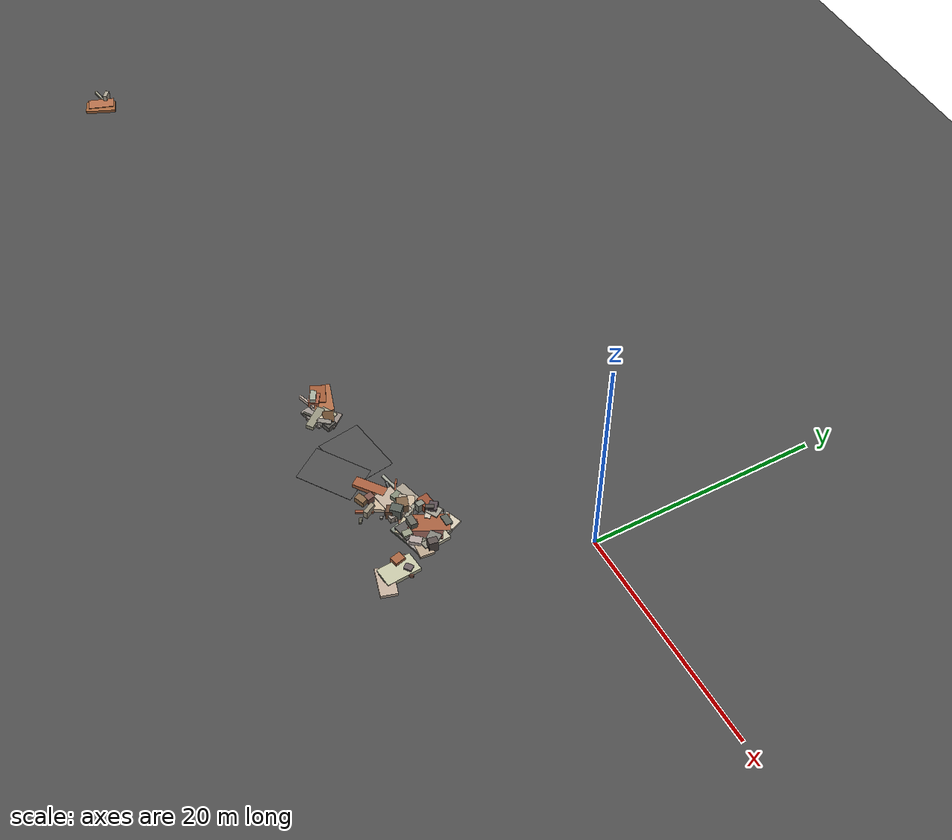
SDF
<sdf version="1.6">
 <world name="navitas_arena">
  <model name="ground_plane">
   <static>true</static>
   <link name="link">
    <collision name="collision">
     <geometry><plane><normal>0 0 1</normal><size>400 400</size></plane></geometry>
     <surface><friction><ode><mu>0.800</mu><mu2>0.800</mu2></ode></friction></surface>
    </collision>
    <visual name="visual">
     <cast_shadows>false</cast_shadows>
     <geometry><plane><normal>0 0 1</normal><size>400 400</size></plane></geometry>
     <material>
      <specular>0.04 0.04 0.04 1</specular>
      <script>
       <uri>file://media/materials/scripts/navitas_asphalt.material</uri>
       <name>Navitas/RealArenaAsphalt</name>
      </script>
     </material>
    </visual>
   </link>
  </model>
  <model name="deb_kolay_165">
   <static>true</static>
   <pose>-66.471 -13.567 0.000 0 0 0</pose>
   <link name="link">
    <collision name="col_0">
     <pose>0.364 -0.550 0.159 0.000 0.000 1.229</pose>
     <geometry><box><size>2.345 1.137 0.318</size></box></geometry>
    </collision>
    <visual name="vis_0">
     <pose>0.364 -0.550 0.159 0.000 0.000 1.229</pose>
     <geometry><box><size>2.345 1.137 0.318</size></box></geometry>
     <material>
      <ambient>0.65 0.40 0.26 1</ambient>
      <diffuse>0.70 0.43 0.29 1</diffuse>
      <specular>0.05 0.05 0.045 1</specular>
     </material>
    </visual>
    <collision name="col_1">
     <pose>-0.063 0.193 0.448 0.000 0.000 -0.726</pose>
     <geometry><box><size>0.782 0.366 0.896</size></box></geometry>
    </collision>
    <visual name="vis_1">
     <pose>-0.063 0.193 0.448 0.000 0.000 -0.726</pose>
     <geometry><box><size>0.782 0.366 0.896</size></box></geometry>
     <material>
      <ambient>0.61 0.59 0.52 1</ambient>
      <diffuse>0.66 0.63 0.56 1</diffuse>
      <specular>0.05 0.05 0.045 1</specular>
     </material>
    </visual>
    <collision name="col_2">
     <pose>0.689 -0.725 0.133 0.000 0.000 1.157</pose>
     <geometry><box><size>2.716 1.278 0.266</size></box></geometry>
    </collision>
    <visual name="vis_2">
     <pose>0.689 -0.725 0.133 0.000 0.000 1.157</pose>
     <geometry><box><size>2.716 1.278 0.266</size></box></geometry>
     <material>
      <ambient>0.61 0.38 0.22 1</ambient>
      <diffuse>0.66 0.41 0.24 1</diffuse>
      <specular>0.05 0.05 0.045 1</specular>
     </material>
    </visual>
    <collision name="col_3">
     <pose>-0.401 -0.198 0.147 0.000 0.000 0.121</pose>
     <geometry><box><size>2.326 0.196 0.294</size></box></geometry>
    </collision>
    <visual name="vis_3">
     <pose>-0.401 -0.198 0.147 0.000 0.000 0.121</pose>
     <geometry><box><size>2.326 0.196 0.294</size></box></geometry>
     <material>
      <ambient>0.60 0.59 0.52 1</ambient>
      <diffuse>0.65 0.64 0.56 1</diffuse>
      <specular>0.05 0.05 0.045 1</specular>
     </material>
    </visual>
    <collision name="col_4">
     <pose>0.104 -0.308 0.084 0.000 0.000 -0.047</pose>
     <geometry><box><size>1.338 0.265 0.169</size></box></geometry>
    </collision>
    <visual name="vis_4">
     <pose>0.104 -0.308 0.084 0.000 0.000 -0.047</pose>
     <geometry><box><size>1.338 0.265 0.169</size></box></geometry>
     <material>
      <ambient>0.55 0.53 0.50 1</ambient>
      <diffuse>0.60 0.57 0.54 1</diffuse>
      <specular>0.05 0.05 0.045 1</specular>
     </material>
    </visual>
   </link>
  </model>
  <model name="road_orta_1_5">
   <static>true</static>
   <pose>-15.738 -14.771 0.040 0 0 2.157</pose>
   <link name="link">
    <collision name="col"><geometry><box><size>3.328 5.000 0.020</size></box></geometry></collision>
    <visual name="vis">
     <geometry><box><size>3.328 5.000 0.020</size></box></geometry>
     <material>
      <specular>0.04 0.04 0.04 1</specular>
      <script>
       <uri>file://media/materials/scripts/navitas_asphalt.material</uri>
       <name>Navitas/RealArenaAsphalt</name>
      </script>
     </material>
    </visual>
   </link>
  </model>
  <model name="road_orta_1_6">
   <static>true</static>
   <pose>-16.605 -12.340 0.040 0 0 1.707</pose>
   <link name="link">
    <collision name="col"><geometry><box><size>3.767 5.000 0.020</size></box></geometry></collision>
    <visual name="vis">
     <geometry><box><size>3.767 5.000 0.020</size></box></geometry>
     <material>
      <specular>0.04 0.04 0.04 1</specular>
      <script>
       <uri>file://media/materials/scripts/navitas_asphalt.material</uri>
       <name>Navitas/RealArenaAsphalt</name>
      </script>
     </material>
    </visual>
   </link>
  </model>
  <model name="deb_orta_9">
   <static>true</static>
   <pose>-12.191 -12.114 0.000 0 0 0</pose>
   <link name="link">
    <collision name="col_0">
     <pose>0.010 0.504 0.104 0.000 0.000 -0.157</pose>
     <geometry><box><size>1.471 0.166 0.207</size></box></geometry>
    </collision>
    <visual name="vis_0">
     <pose>0.010 0.504 0.104 0.000 0.000 -0.157</pose>
     <geometry><box><size>1.471 0.166 0.207</size></box></geometry>
     <material>
      <ambient>0.38 0.39 0.39 1</ambient>
      <diffuse>0.41 0.42 0.42 1</diffuse>
      <specular>0.05 0.05 0.045 1</specular>
     </material>
    </visual>
    <collision name="col_1">
     <pose>-0.794 -0.791 0.205 0.000 0.000 0.635</pose>
     <geometry><box><size>2.735 0.870 0.410</size></box></geometry>
    </collision>
    <visual name="vis_1">
     <pose>-0.794 -0.791 0.205 0.000 0.000 0.635</pose>
     <geometry><box><size>2.735 0.870 0.410</size></box></geometry>
     <material>
      <ambient>0.60 0.34 0.22 1</ambient>
      <diffuse>0.65 0.37 0.24 1</diffuse>
      <specular>0.05 0.05 0.045 1</specular>
     </material>
    </visual>
    <collision name="col_2">
     <pose>-0.638 0.853 0.070 0.000 0.000 0.217</pose>
     <geometry><box><size>1.701 0.261 0.140</size></box></geometry>
    </collision>
    <visual name="vis_2">
     <pose>-0.638 0.853 0.070 0.000 0.000 0.217</pose>
     <geometry><box><size>1.701 0.261 0.140</size></box></geometry>
     <material>
      <ambient>0.60 0.60 0.56 1</ambient>
      <diffuse>0.64 0.65 0.60 1</diffuse>
      <specular>0.05 0.05 0.045 1</specular>
     </material>
    </visual>
    <collision name="col_3">
     <pose>0.271 0.883 0.090 0.000 0.000 -0.571</pose>
     <geometry><box><size>2.050 0.127 0.181</size></box></geometry>
    </collision>
    <visual name="vis_3">
     <pose>0.271 0.883 0.090 0.000 0.000 -0.571</pose>
     <geometry><box><size>2.050 0.127 0.181</size></box></geometry>
     <material>
      <ambient>0.59 0.34 0.22 1</ambient>
      <diffuse>0.64 0.36 0.24 1</diffuse>
      <specular>0.05 0.05 0.045 1</specular>
     </material>
    </visual>
   </link>
  </model>
  <model name="deb_orta_37">
   <static>true</static>
   <pose>-6.172 -11.400 0.000 0 0 0</pose>
   <link name="link">
    <collision name="col_0">
     <pose>-0.626 0.752 0.178 0.000 0.000 3.235</pose>
     <geometry><box><size>2.446 1.762 0.355</size></box></geometry>
    </collision>
    <visual name="vis_0">
     <pose>-0.626 0.752 0.178 0.000 0.000 3.235</pose>
     <geometry><box><size>2.446 1.762 0.355</size></box></geometry>
     <material>
      <ambient>0.71 0.70 0.61 1</ambient>
      <diffuse>0.77 0.75 0.66 1</diffuse>
      <specular>0.05 0.05 0.045 1</specular>
     </material>
    </visual>
    <collision name="col_1">
     <pose>0.031 -0.025 0.080 0.000 0.000 1.758</pose>
     <geometry><box><size>2.096 0.311 0.161</size></box></geometry>
    </collision>
    <visual name="vis_1">
     <pose>0.031 -0.025 0.080 0.000 0.000 1.758</pose>
     <geometry><box><size>2.096 0.311 0.161</size></box></geometry>
     <material>
      <ambient>0.40 0.29 0.20 1</ambient>
      <diffuse>0.43 0.32 0.22 1</diffuse>
      <specular>0.05 0.05 0.045 1</specular>
     </material>
    </visual>
    <collision name="col_2">
     <pose>-0.449 -0.476 0.124 0.000 0.000 3.043</pose>
     <geometry><box><size>3.146 1.216 0.249</size></box></geometry>
    </collision>
    <visual name="vis_2">
     <pose>-0.449 -0.476 0.124 0.000 0.000 3.043</pose>
     <geometry><box><size>3.146 1.216 0.249</size></box></geometry>
     <material>
      <ambient>0.67 0.59 0.51 1</ambient>
      <diffuse>0.72 0.64 0.55 1</diffuse>
      <specular>0.05 0.05 0.045 1</specular>
     </material>
    </visual>
    <collision name="col_3">
     <pose>-0.467 -0.073 0.080 0.000 0.000 2.141</pose>
     <geometry><box><size>1.715 0.242 0.161</size></box></geometry>
    </collision>
    <visual name="vis_3">
     <pose>-0.467 -0.073 0.080 0.000 0.000 2.141</pose>
     <geometry><box><size>1.715 0.242 0.161</size></box></geometry>
     <material>
      <ambient>0.62 0.38 0.26 1</ambient>
      <diffuse>0.67 0.41 0.29 1</diffuse>
      <specular>0.05 0.05 0.045 1</specular>
     </material>
    </visual>
    <collision name="col_4">
     <pose>-0.904 0.280 0.192 0.000 0.000 0.992</pose>
     <geometry><box><size>2.813 1.371 0.384</size></box></geometry>
    </collision>
    <visual name="vis_4">
     <pose>-0.904 0.280 0.192 0.000 0.000 0.992</pose>
     <geometry><box><size>2.813 1.371 0.384</size></box></geometry>
     <material>
      <ambient>0.37 0.24 0.20 1</ambient>
      <diffuse>0.40 0.25 0.22 1</diffuse>
      <specular>0.05 0.05 0.045 1</specular>
     </material>
    </visual>
   </link>
  </model>
  <model name="deb_orta_81">
   <static>true</static>
   <pose>-21.359 -13.124 0.000 0 0 0</pose>
   <link name="link">
    <collision name="col_0">
     <pose>0.035 0.331 0.095 0.000 0.000 3.810</pose>
     <geometry><box><size>2.518 1.600 0.191</size></box></geometry>
    </collision>
    <visual name="vis_0">
     <pose>0.035 0.331 0.095 0.000 0.000 3.810</pose>
     <geometry><box><size>2.518 1.600 0.191</size></box></geometry>
     <material>
      <ambient>0.54 0.49 0.46 1</ambient>
      <diffuse>0.58 0.53 0.50 1</diffuse>
      <specular>0.05 0.05 0.045 1</specular>
     </material>
    </visual>
    <collision name="col_1">
     <pose>-0.297 -0.469 0.107 0.000 0.000 3.411</pose>
     <geometry><box><size>2.279 0.846 0.213</size></box></geometry>
    </collision>
    <visual name="vis_1">
     <pose>-0.297 -0.469 0.107 0.000 0.000 3.411</pose>
     <geometry><box><size>2.279 0.846 0.213</size></box></geometry>
     <material>
      <ambient>0.56 0.53 0.51 1</ambient>
      <diffuse>0.60 0.57 0.55 1</diffuse>
      <specular>0.05 0.05 0.045 1</specular>
     </material>
    </visual>
    <collision name="col_2">
     <pose>0.002 0.544 0.136 0.000 0.000 1.898</pose>
     <geometry><box><size>0.448 0.269 0.272</size></box></geometry>
    </collision>
    <visual name="vis_2">
     <pose>0.002 0.544 0.136 0.000 0.000 1.898</pose>
     <geometry><box><size>0.448 0.269 0.272</size></box></geometry>
     <material>
      <ambient>0.29 0.29 0.27 1</ambient>
      <diffuse>0.31 0.32 0.29 1</diffuse>
      <specular>0.05 0.05 0.045 1</specular>
     </material>
    </visual>
    <collision name="col_3">
     <pose>-0.121 -0.394 0.184 0.000 0.000 2.209</pose>
     <geometry><box><size>2.155 0.669 0.369</size></box></geometry>
    </collision>
    <visual name="vis_3">
     <pose>-0.121 -0.394 0.184 0.000 0.000 2.209</pose>
     <geometry><box><size>2.155 0.669 0.369</size></box></geometry>
     <material>
      <ambient>0.54 0.53 0.46 1</ambient>
      <diffuse>0.58 0.57 0.49 1</diffuse>
      <specular>0.05 0.05 0.045 1</specular>
     </material>
    </visual>
    <collision name="col_4">
     <pose>-0.221 -0.463 0.183 0.000 0.000 3.751</pose>
     <geometry><box><size>1.977 0.170 0.366</size></box></geometry>
    </collision>
    <visual name="vis_4">
     <pose>-0.221 -0.463 0.183 0.000 0.000 3.751</pose>
     <geometry><box><size>1.977 0.170 0.366</size></box></geometry>
     <material>
      <ambient>0.36 0.36 0.32 1</ambient>
      <diffuse>0.39 0.38 0.34 1</diffuse>
      <specular>0.05 0.05 0.045 1</specular>
     </material>
    </visual>
   </link>
  </model>
  <model name="deb_orta_84">
   <static>true</static>
   <pose>-4.984 -15.140 0.000 0 0 0</pose>
   <link name="link">
    <collision name="col_0">
     <pose>0.599 -0.846 0.146 0.000 0.000 2.844</pose>
     <geometry><box><size>2.613 1.403 0.291</size></box></geometry>
    </collision>
    <visual name="vis_0">
     <pose>0.599 -0.846 0.146 0.000 0.000 2.844</pose>
     <geometry><box><size>2.613 1.403 0.291</size></box></geometry>
     <material>
      <ambient>0.70 0.63 0.56 1</ambient>
      <diffuse>0.76 0.68 0.61 1</diffuse>
      <specular>0.05 0.05 0.045 1</specular>
     </material>
    </visual>
    <collision name="col_1">
     <pose>0.247 -0.936 0.155 0.000 0.000 3.201</pose>
     <geometry><box><size>1.016 0.241 0.309</size></box></geometry>
    </collision>
    <visual name="vis_1">
     <pose>0.247 -0.936 0.155 0.000 0.000 3.201</pose>
     <geometry><box><size>1.016 0.241 0.309</size></box></geometry>
     <material>
      <ambient>0.28 0.32 0.27 1</ambient>
      <diffuse>0.31 0.34 0.29 1</diffuse>
      <specular>0.05 0.05 0.045 1</specular>
     </material>
    </visual>
    <collision name="col_2">
     <pose>0.139 0.490 0.184 0.000 0.000 1.642</pose>
     <geometry><box><size>2.990 1.704 0.368</size></box></geometry>
    </collision>
    <visual name="vis_2">
     <pose>0.139 0.490 0.184 0.000 0.000 1.642</pose>
     <geometry><box><size>2.990 1.704 0.368</size></box></geometry>
     <material>
      <ambient>0.71 0.71 0.60 1</ambient>
      <diffuse>0.77 0.77 0.65 1</diffuse>
      <specular>0.05 0.05 0.045 1</specular>
     </material>
    </visual>
    <collision name="col_3">
     <pose>0.468 -0.746 0.145 0.000 0.000 2.862</pose>
     <geometry><box><size>2.090 1.062 0.290</size></box></geometry>
    </collision>
    <visual name="vis_3">
     <pose>0.468 -0.746 0.145 0.000 0.000 2.862</pose>
     <geometry><box><size>2.090 1.062 0.290</size></box></geometry>
     <material>
      <ambient>0.38 0.36 0.32 1</ambient>
      <diffuse>0.41 0.39 0.35 1</diffuse>
      <specular>0.05 0.05 0.045 1</specular>
     </material>
    </visual>
    <collision name="col_4">
     <pose>0.582 0.607 0.151 0.000 0.000 1.722</pose>
     <geometry><box><size>1.430 0.285 0.302</size></box></geometry>
    </collision>
    <visual name="vis_4">
     <pose>0.582 0.607 0.151 0.000 0.000 1.722</pose>
     <geometry><box><size>1.430 0.285 0.302</size></box></geometry>
     <material>
      <ambient>0.34 0.35 0.33 1</ambient>
      <diffuse>0.37 0.38 0.36 1</diffuse>
      <specular>0.05 0.05 0.045 1</specular>
     </material>
    </visual>
   </link>
  </model>
  <model name="deb_orta_86">
   <static>true</static>
   <pose>-20.798 -12.571 0.000 0 0 0</pose>
   <link name="link">
    <collision name="col_0">
     <pose>-0.200 -0.373 0.192 0.000 0.000 1.938</pose>
     <geometry><box><size>1.107 0.740 0.384</size></box></geometry>
    </collision>
    <visual name="vis_0">
     <pose>-0.200 -0.373 0.192 0.000 0.000 1.938</pose>
     <geometry><box><size>1.107 0.740 0.384</size></box></geometry>
     <material>
      <ambient>0.76 0.71 0.61 1</ambient>
      <diffuse>0.82 0.77 0.66 1</diffuse>
      <specular>0.05 0.05 0.045 1</specular>
     </material>
    </visual>
    <collision name="col_1">
     <pose>0.238 -0.558 0.308 0.000 0.000 0.876</pose>
     <geometry><box><size>1.129 0.441 0.616</size></box></geometry>
    </collision>
    <visual name="vis_1">
     <pose>0.238 -0.558 0.308 0.000 0.000 0.876</pose>
     <geometry><box><size>1.129 0.441 0.616</size></box></geometry>
     <material>
      <ambient>0.52 0.50 0.47 1</ambient>
      <diffuse>0.56 0.54 0.51 1</diffuse>
      <specular>0.05 0.05 0.045 1</specular>
     </material>
    </visual>
    <collision name="col_2">
     <pose>0.480 -0.307 0.250 0.000 0.000 1.896</pose>
     <geometry><box><size>0.848 0.839 0.501</size></box></geometry>
    </collision>
    <visual name="vis_2">
     <pose>0.480 -0.307 0.250 0.000 0.000 1.896</pose>
     <geometry><box><size>0.848 0.839 0.501</size></box></geometry>
     <material>
      <ambient>0.33 0.33 0.31 1</ambient>
      <diffuse>0.36 0.35 0.33 1</diffuse>
      <specular>0.05 0.05 0.045 1</specular>
     </material>
    </visual>
    <collision name="col_3">
     <pose>-0.513 -0.062 0.160 0.000 0.000 0.493</pose>
     <geometry><box><size>1.411 1.179 0.320</size></box></geometry>
    </collision>
    <visual name="vis_3">
     <pose>-0.513 -0.062 0.160 0.000 0.000 0.493</pose>
     <geometry><box><size>1.411 1.179 0.320</size></box></geometry>
     <material>
      <ambient>0.64 0.62 0.53 1</ambient>
      <diffuse>0.69 0.67 0.57 1</diffuse>
      <specular>0.05 0.05 0.045 1</specular>
     </material>
    </visual>
    <collision name="col_4">
     <pose>-0.071 -0.063 0.289 0.000 0.000 2.739</pose>
     <geometry><box><size>1.149 0.910 0.579</size></box></geometry>
    </collision>
    <visual name="vis_4">
     <pose>-0.071 -0.063 0.289 0.000 0.000 2.739</pose>
     <geometry><box><size>1.149 0.910 0.579</size></box></geometry>
     <material>
      <ambient>0.38 0.26 0.17 1</ambient>
      <diffuse>0.41 0.29 0.18 1</diffuse>
      <specular>0.05 0.05 0.045 1</specular>
     </material>
    </visual>
   </link>
  </model>
  <model name="deb_orta_110">
   <static>true</static>
   <pose>-6.693 -12.317 0.000 0 0 0</pose>
   <link name="link">
    <collision name="col_0">
     <pose>-0.728 -0.041 0.090 0.000 0.000 0.288</pose>
     <geometry><box><size>2.890 1.343 0.180</size></box></geometry>
    </collision>
    <visual name="vis_0">
     <pose>-0.728 -0.041 0.090 0.000 0.000 0.288</pose>
     <geometry><box><size>2.890 1.343 0.180</size></box></geometry>
     <material>
      <ambient>0.46 0.48 0.43 1</ambient>
      <diffuse>0.49 0.52 0.47 1</diffuse>
      <specular>0.05 0.05 0.045 1</specular>
     </material>
    </visual>
    <collision name="col_1">
     <pose>-0.271 0.674 0.169 0.000 0.000 1.378</pose>
     <geometry><box><size>1.527 1.417 0.338</size></box></geometry>
    </collision>
    <visual name="vis_1">
     <pose>-0.271 0.674 0.169 0.000 0.000 1.378</pose>
     <geometry><box><size>1.527 1.417 0.338</size></box></geometry>
     <material>
      <ambient>0.47 0.47 0.42 1</ambient>
      <diffuse>0.51 0.51 0.45 1</diffuse>
      <specular>0.05 0.05 0.045 1</specular>
     </material>
    </visual>
    <collision name="col_2">
     <pose>-0.769 -0.213 0.287 0.000 0.000 -0.077</pose>
     <geometry><box><size>0.567 0.761 0.574</size></box></geometry>
    </collision>
    <visual name="vis_2">
     <pose>-0.769 -0.213 0.287 0.000 0.000 -0.077</pose>
     <geometry><box><size>0.567 0.761 0.574</size></box></geometry>
     <material>
      <ambient>0.54 0.55 0.47 1</ambient>
      <diffuse>0.58 0.60 0.51 1</diffuse>
      <specular>0.05 0.05 0.045 1</specular>
     </material>
    </visual>
    <collision name="col_3">
     <pose>-0.703 0.279 0.088 0.000 0.000 2.587</pose>
     <geometry><box><size>1.072 0.225 0.176</size></box></geometry>
    </collision>
    <visual name="vis_3">
     <pose>-0.703 0.279 0.088 0.000 0.000 2.587</pose>
     <geometry><box><size>1.072 0.225 0.176</size></box></geometry>
     <material>
      <ambient>0.47 0.46 0.44 1</ambient>
      <diffuse>0.51 0.50 0.48 1</diffuse>
      <specular>0.05 0.05 0.045 1</specular>
     </material>
    </visual>
    <collision name="col_4">
     <pose>0.113 0.072 0.281 0.000 0.000 2.420</pose>
     <geometry><box><size>0.643 0.999 0.561</size></box></geometry>
    </collision>
    <visual name="vis_4">
     <pose>0.113 0.072 0.281 0.000 0.000 2.420</pose>
     <geometry><box><size>0.643 0.999 0.561</size></box></geometry>
     <material>
      <ambient>0.63 0.58 0.56 1</ambient>
      <diffuse>0.68 0.63 0.61 1</diffuse>
      <specular>0.05 0.05 0.045 1</specular>
     </material>
    </visual>
    <collision name="col_5">
     <pose>-0.173 0.249 0.095 0.000 0.000 0.225</pose>
     <geometry><box><size>3.184 1.602 0.189</size></box></geometry>
    </collision>
    <visual name="vis_5">
     <pose>-0.173 0.249 0.095 0.000 0.000 0.225</pose>
     <geometry><box><size>3.184 1.602 0.189</size></box></geometry>
     <material>
      <ambient>0.59 0.56 0.54 1</ambient>
      <diffuse>0.64 0.61 0.59 1</diffuse>
      <specular>0.05 0.05 0.045 1</specular>
     </material>
    </visual>
   </link>
  </model>
  <model name="deb_orta_181">
   <static>true</static>
   <pose>-6.193 -10.876 0.000 0 0 0</pose>
   <link name="link">
    <collision name="col_0">
     <pose>-0.080 -0.901 0.069 0.000 0.000 0.700</pose>
     <geometry><box><size>0.363 0.274 0.138</size></box></geometry>
    </collision>
    <visual name="vis_0">
     <pose>-0.080 -0.901 0.069 0.000 0.000 0.700</pose>
     <geometry><box><size>0.363 0.274 0.138</size></box></geometry>
     <material>
      <ambient>0.69 0.65 0.56 1</ambient>
      <diffuse>0.74 0.70 0.61 1</diffuse>
      <specular>0.05 0.05 0.045 1</specular>
     </material>
    </visual>
    <collision name="col_1">
     <pose>-0.235 0.379 0.149 0.000 0.000 -0.641</pose>
     <geometry><box><size>1.717 0.160 0.298</size></box></geometry>
    </collision>
    <visual name="vis_1">
     <pose>-0.235 0.379 0.149 0.000 0.000 -0.641</pose>
     <geometry><box><size>1.717 0.160 0.298</size></box></geometry>
     <material>
      <ambient>0.42 0.26 0.18 1</ambient>
      <diffuse>0.46 0.28 0.20 1</diffuse>
      <specular>0.05 0.05 0.045 1</specular>
     </material>
    </visual>
    <collision name="col_2">
     <pose>0.671 -0.437 0.541 0.000 0.000 1.398</pose>
     <geometry><box><size>0.788 0.593 1.081</size></box></geometry>
    </collision>
    <visual name="vis_2">
     <pose>0.671 -0.437 0.541 0.000 0.000 1.398</pose>
     <geometry><box><size>0.788 0.593 1.081</size></box></geometry>
     <material>
      <ambient>0.32 0.29 0.28 1</ambient>
      <diffuse>0.35 0.31 0.30 1</diffuse>
      <specular>0.05 0.05 0.045 1</specular>
     </material>
    </visual>
    <collision name="col_3">
     <pose>0.025 0.030 0.275 0.000 0.000 0.619</pose>
     <geometry><box><size>0.978 0.818 0.549</size></box></geometry>
    </collision>
    <visual name="vis_3">
     <pose>0.025 0.030 0.275 0.000 0.000 0.619</pose>
     <geometry><box><size>0.978 0.818 0.549</size></box></geometry>
     <material>
      <ambient>0.47 0.47 0.43 1</ambient>
      <diffuse>0.50 0.50 0.47 1</diffuse>
      <specular>0.05 0.05 0.045 1</specular>
     </material>
    </visual>
    <collision name="col_4">
     <pose>-0.242 0.183 0.166 0.000 0.000 1.791</pose>
     <geometry><box><size>2.691 1.143 0.333</size></box></geometry>
    </collision>
    <visual name="vis_4">
     <pose>-0.242 0.183 0.166 0.000 0.000 1.791</pose>
     <geometry><box><size>2.691 1.143 0.333</size></box></geometry>
     <material>
      <ambient>0.52 0.51 0.47 1</ambient>
      <diffuse>0.56 0.55 0.50 1</diffuse>
      <specular>0.05 0.05 0.045 1</specular>
     </material>
    </visual>
   </link>
  </model>
  <model name="deb_orta_226">
   <static>true</static>
   <pose>-23.150 -12.760 0.000 0 0 0</pose>
   <link name="link">
    <collision name="col_0">
     <pose>-0.037 -0.024 0.287 0.000 0.000 -0.595</pose>
     <geometry><box><size>1.108 0.860 0.574</size></box></geometry>
    </collision>
    <visual name="vis_0">
     <pose>-0.037 -0.024 0.287 0.000 0.000 -0.595</pose>
     <geometry><box><size>1.108 0.860 0.574</size></box></geometry>
     <material>
      <ambient>0.60 0.34 0.25 1</ambient>
      <diffuse>0.64 0.37 0.27 1</diffuse>
      <specular>0.05 0.05 0.045 1</specular>
     </material>
    </visual>
    <collision name="col_1">
     <pose>0.027 0.721 0.119 0.000 0.000 -0.330</pose>
     <geometry><box><size>2.816 1.560 0.238</size></box></geometry>
    </collision>
    <visual name="vis_1">
     <pose>0.027 0.721 0.119 0.000 0.000 -0.330</pose>
     <geometry><box><size>2.816 1.560 0.238</size></box></geometry>
     <material>
      <ambient>0.63 0.39 0.25 1</ambient>
      <diffuse>0.68 0.42 0.27 1</diffuse>
      <specular>0.05 0.05 0.045 1</specular>
     </material>
    </visual>
    <collision name="col_2">
     <pose>-0.117 -0.075 0.446 0.000 0.000 -0.552</pose>
     <geometry><box><size>1.034 0.499 0.892</size></box></geometry>
    </collision>
    <visual name="vis_2">
     <pose>-0.117 -0.075 0.446 0.000 0.000 -0.552</pose>
     <geometry><box><size>1.034 0.499 0.892</size></box></geometry>
     <material>
      <ambient>0.59 0.62 0.56 1</ambient>
      <diffuse>0.64 0.67 0.61 1</diffuse>
      <specular>0.05 0.05 0.045 1</specular>
     </material>
    </visual>
    <collision name="col_3">
     <pose>-0.190 -0.598 0.181 0.000 0.000 0.294</pose>
     <geometry><box><size>1.725 0.185 0.361</size></box></geometry>
    </collision>
    <visual name="vis_3">
     <pose>-0.190 -0.598 0.181 0.000 0.000 0.294</pose>
     <geometry><box><size>1.725 0.185 0.361</size></box></geometry>
     <material>
      <ambient>0.73 0.67 0.62 1</ambient>
      <diffuse>0.79 0.72 0.67 1</diffuse>
      <specular>0.05 0.05 0.045 1</specular>
     </material>
    </visual>
    <collision name="col_4">
     <pose>-0.509 0.542 0.167 0.000 0.000 -0.451</pose>
     <geometry><box><size>1.805 1.292 0.335</size></box></geometry>
    </collision>
    <visual name="vis_4">
     <pose>-0.509 0.542 0.167 0.000 0.000 -0.451</pose>
     <geometry><box><size>1.805 1.292 0.335</size></box></geometry>
     <material>
      <ambient>0.57 0.33 0.20 1</ambient>
      <diffuse>0.62 0.35 0.21 1</diffuse>
      <specular>0.05 0.05 0.045 1</specular>
     </material>
    </visual>
    <collision name="col_5">
     <pose>-0.286 -0.438 0.117 0.000 0.000 -0.869</pose>
     <geometry><box><size>0.262 0.204 0.234</size></box></geometry>
    </collision>
    <visual name="vis_5">
     <pose>-0.286 -0.438 0.117 0.000 0.000 -0.869</pose>
     <geometry><box><size>0.262 0.204 0.234</size></box></geometry>
     <material>
      <ambient>0.65 0.40 0.30 1</ambient>
      <diffuse>0.71 0.43 0.32 1</diffuse>
      <specular>0.05 0.05 0.045 1</specular>
     </material>
    </visual>
    <collision name="col_6">
     <pose>-0.318 -0.321 0.159 0.000 0.000 1.090</pose>
     <geometry><box><size>0.443 0.262 0.318</size></box></geometry>
    </collision>
    <visual name="vis_6">
     <pose>-0.318 -0.321 0.159 0.000 0.000 1.090</pose>
     <geometry><box><size>0.443 0.262 0.318</size></box></geometry>
     <material>
      <ambient>0.57 0.55 0.53 1</ambient>
      <diffuse>0.61 0.59 0.57 1</diffuse>
      <specular>0.05 0.05 0.045 1</specular>
     </material>
    </visual>
   </link>
  </model>
  <model name="deb_orta_230">
   <static>true</static>
   <pose>-10.635 -11.540 0.000 0 0 0</pose>
   <link name="link">
    <collision name="col_0">
     <pose>-0.286 -0.082 0.421 0.000 0.000 0.337</pose>
     <geometry><box><size>0.625 0.765 0.842</size></box></geometry>
    </collision>
    <visual name="vis_0">
     <pose>-0.286 -0.082 0.421 0.000 0.000 0.337</pose>
     <geometry><box><size>0.625 0.765 0.842</size></box></geometry>
     <material>
      <ambient>0.47 0.50 0.42 1</ambient>
      <diffuse>0.51 0.54 0.46 1</diffuse>
      <specular>0.05 0.05 0.045 1</specular>
     </material>
    </visual>
    <collision name="col_1">
     <pose>-0.044 -0.416 0.173 0.000 0.000 0.986</pose>
     <geometry><box><size>3.151 1.603 0.347</size></box></geometry>
    </collision>
    <visual name="vis_1">
     <pose>-0.044 -0.416 0.173 0.000 0.000 0.986</pose>
     <geometry><box><size>3.151 1.603 0.347</size></box></geometry>
     <material>
      <ambient>0.74 0.67 0.58 1</ambient>
      <diffuse>0.80 0.72 0.62 1</diffuse>
      <specular>0.05 0.05 0.045 1</specular>
     </material>
    </visual>
    <collision name="col_2">
     <pose>0.161 -0.303 0.108 0.000 0.000 0.324</pose>
     <geometry><box><size>0.207 0.161 0.216</size></box></geometry>
    </collision>
    <visual name="vis_2">
     <pose>0.161 -0.303 0.108 0.000 0.000 0.324</pose>
     <geometry><box><size>0.207 0.161 0.216</size></box></geometry>
     <material>
      <ambient>0.64 0.63 0.53 1</ambient>
      <diffuse>0.69 0.68 0.57 1</diffuse>
      <specular>0.05 0.05 0.045 1</specular>
     </material>
    </visual>
    <collision name="col_3">
     <pose>-0.382 0.651 0.089 0.000 0.000 0.240</pose>
     <geometry><box><size>1.971 1.549 0.178</size></box></geometry>
    </collision>
    <visual name="vis_3">
     <pose>-0.382 0.651 0.089 0.000 0.000 0.240</pose>
     <geometry><box><size>1.971 1.549 0.178</size></box></geometry>
     <material>
      <ambient>0.61 0.57 0.51 1</ambient>
      <diffuse>0.65 0.61 0.55 1</diffuse>
      <specular>0.05 0.05 0.045 1</specular>
     </material>
    </visual>
    <collision name="col_4">
     <pose>-0.046 -0.538 0.199 0.000 0.000 0.151</pose>
     <geometry><box><size>2.830 1.656 0.398</size></box></geometry>
    </collision>
    <visual name="vis_4">
     <pose>-0.046 -0.538 0.199 0.000 0.000 0.151</pose>
     <geometry><box><size>2.830 1.656 0.398</size></box></geometry>
     <material>
      <ambient>0.70 0.63 0.56 1</ambient>
      <diffuse>0.75 0.68 0.61 1</diffuse>
      <specular>0.05 0.05 0.045 1</specular>
     </material>
    </visual>
    <collision name="col_5">
     <pose>0.293 0.127 0.523 0.000 0.000 0.857</pose>
     <geometry><box><size>0.649 0.600 1.046</size></box></geometry>
    </collision>
    <visual name="vis_5">
     <pose>0.293 0.127 0.523 0.000 0.000 0.857</pose>
     <geometry><box><size>0.649 0.600 1.046</size></box></geometry>
     <material>
      <ambient>0.64 0.60 0.53 1</ambient>
      <diffuse>0.70 0.65 0.58 1</diffuse>
      <specular>0.05 0.05 0.045 1</specular>
     </material>
    </visual>
    <collision name="col_6">
     <pose>-0.098 -0.583 0.121 0.000 0.000 -0.199</pose>
     <geometry><box><size>0.487 0.205 0.242</size></box></geometry>
    </collision>
    <visual name="vis_6">
     <pose>-0.098 -0.583 0.121 0.000 0.000 -0.199</pose>
     <geometry><box><size>0.487 0.205 0.242</size></box></geometry>
     <material>
      <ambient>0.50 0.34 0.30 1</ambient>
      <diffuse>0.54 0.37 0.32 1</diffuse>
      <specular>0.05 0.05 0.045 1</specular>
     </material>
    </visual>
   </link>
  </model>
  <model name="deb_orta_240">
   <static>true</static>
   <pose>-4.831 -13.875 0.000 0 0 0</pose>
   <link name="link">
    <collision name="col_0">
     <pose>0.256 -0.059 0.271 0.000 0.000 0.653</pose>
     <geometry><box><size>0.669 0.556 0.543</size></box></geometry>
    </collision>
    <visual name="vis_0">
     <pose>0.256 -0.059 0.271 0.000 0.000 0.653</pose>
     <geometry><box><size>0.669 0.556 0.543</size></box></geometry>
     <material>
      <ambient>0.39 0.34 0.35 1</ambient>
      <diffuse>0.42 0.37 0.38 1</diffuse>
      <specular>0.05 0.05 0.045 1</specular>
     </material>
    </visual>
    <collision name="col_1">
     <pose>-0.789 -0.454 0.336 0.000 0.000 1.801</pose>
     <geometry><box><size>0.930 0.746 0.672</size></box></geometry>
    </collision>
    <visual name="vis_1">
     <pose>-0.789 -0.454 0.336 0.000 0.000 1.801</pose>
     <geometry><box><size>0.930 0.746 0.672</size></box></geometry>
     <material>
      <ambient>0.60 0.36 0.23 1</ambient>
      <diffuse>0.65 0.39 0.25 1</diffuse>
      <specular>0.05 0.05 0.045 1</specular>
     </material>
    </visual>
    <collision name="col_2">
     <pose>0.824 -0.179 0.135 0.000 0.000 0.891</pose>
     <geometry><box><size>0.437 0.167 0.270</size></box></geometry>
    </collision>
    <visual name="vis_2">
     <pose>0.824 -0.179 0.135 0.000 0.000 0.891</pose>
     <geometry><box><size>0.437 0.167 0.270</size></box></geometry>
     <material>
      <ambient>0.47 0.31 0.24 1</ambient>
      <diffuse>0.50 0.33 0.26 1</diffuse>
      <specular>0.05 0.05 0.045 1</specular>
     </material>
    </visual>
    <collision name="col_3">
     <pose>-1.053 0.211 0.087 0.000 0.000 1.620</pose>
     <geometry><box><size>0.299 0.280 0.174</size></box></geometry>
    </collision>
    <visual name="vis_3">
     <pose>-1.053 0.211 0.087 0.000 0.000 1.620</pose>
     <geometry><box><size>0.299 0.280 0.174</size></box></geometry>
     <material>
      <ambient>0.46 0.31 0.26 1</ambient>
      <diffuse>0.49 0.33 0.28 1</diffuse>
      <specular>0.05 0.05 0.045 1</specular>
     </material>
    </visual>
   </link>
  </model>
  <model name="deb_orta_250">
   <static>true</static>
   <pose>-8.560 -11.643 0.000 0 0 0</pose>
   <link name="link">
    <collision name="col_0">
     <pose>-0.789 0.388 0.185 0.000 0.000 2.141</pose>
     <geometry><box><size>1.434 0.306 0.371</size></box></geometry>
    </collision>
    <visual name="vis_0">
     <pose>-0.789 0.388 0.185 0.000 0.000 2.141</pose>
     <geometry><box><size>1.434 0.306 0.371</size></box></geometry>
     <material>
      <ambient>0.57 0.56 0.51 1</ambient>
      <diffuse>0.62 0.61 0.55 1</diffuse>
      <specular>0.05 0.05 0.045 1</specular>
     </material>
    </visual>
    <collision name="col_1">
     <pose>-0.974 0.404 0.145 0.000 0.000 2.554</pose>
     <geometry><box><size>0.285 0.167 0.289</size></box></geometry>
    </collision>
    <visual name="vis_1">
     <pose>-0.974 0.404 0.145 0.000 0.000 2.554</pose>
     <geometry><box><size>0.285 0.167 0.289</size></box></geometry>
     <material>
      <ambient>0.59 0.31 0.21 1</ambient>
      <diffuse>0.63 0.33 0.22 1</diffuse>
      <specular>0.05 0.05 0.045 1</specular>
     </material>
    </visual>
    <collision name="col_2">
     <pose>0.376 -0.227 0.134 0.000 0.000 1.665</pose>
     <geometry><box><size>0.351 0.311 0.268</size></box></geometry>
    </collision>
    <visual name="vis_2">
     <pose>0.376 -0.227 0.134 0.000 0.000 1.665</pose>
     <geometry><box><size>0.351 0.311 0.268</size></box></geometry>
     <material>
      <ambient>0.58 0.29 0.21 1</ambient>
      <diffuse>0.62 0.31 0.23 1</diffuse>
      <specular>0.05 0.05 0.045 1</specular>
     </material>
    </visual>
    <collision name="col_3">
     <pose>0.868 -0.117 0.142 0.000 0.000 0.667</pose>
     <geometry><box><size>2.539 1.777 0.285</size></box></geometry>
    </collision>
    <visual name="vis_3">
     <pose>0.868 -0.117 0.142 0.000 0.000 0.667</pose>
     <geometry><box><size>2.539 1.777 0.285</size></box></geometry>
     <material>
      <ambient>0.72 0.68 0.56 1</ambient>
      <diffuse>0.77 0.73 0.61 1</diffuse>
      <specular>0.05 0.05 0.045 1</specular>
     </material>
    </visual>
   </link>
  </model>
  <model name="deb_orta_262">
   <static>true</static>
   <pose>-10.988 -13.906 0.000 0 0 0</pose>
   <link name="link">
    <collision name="col_0">
     <pose>0.950 0.453 0.063 0.000 0.000 0.836</pose>
     <geometry><box><size>0.227 0.260 0.127</size></box></geometry>
    </collision>
    <visual name="vis_0">
     <pose>0.950 0.453 0.063 0.000 0.000 0.836</pose>
     <geometry><box><size>0.227 0.260 0.127</size></box></geometry>
     <material>
      <ambient>0.48 0.46 0.43 1</ambient>
      <diffuse>0.52 0.50 0.47 1</diffuse>
      <specular>0.05 0.05 0.045 1</specular>
     </material>
    </visual>
    <collision name="col_1">
     <pose>-1.205 -0.204 0.253 0.000 0.000 1.948</pose>
     <geometry><box><size>0.600 0.912 0.505</size></box></geometry>
    </collision>
    <visual name="vis_1">
     <pose>-1.205 -0.204 0.253 0.000 0.000 1.948</pose>
     <geometry><box><size>0.600 0.912 0.505</size></box></geometry>
     <material>
      <ambient>0.50 0.38 0.26 1</ambient>
      <diffuse>0.54 0.41 0.28 1</diffuse>
      <specular>0.05 0.05 0.045 1</specular>
     </material>
    </visual>
    <collision name="col_2">
     <pose>0.087 -0.155 0.356 0.000 0.000 2.061</pose>
     <geometry><box><size>1.068 0.354 0.712</size></box></geometry>
    </collision>
    <visual name="vis_2">
     <pose>0.087 -0.155 0.356 0.000 0.000 2.061</pose>
     <geometry><box><size>1.068 0.354 0.712</size></box></geometry>
     <material>
      <ambient>0.56 0.52 0.45 1</ambient>
      <diffuse>0.60 0.56 0.48 1</diffuse>
      <specular>0.05 0.05 0.045 1</specular>
     </material>
    </visual>
    <collision name="col_3">
     <pose>-0.201 -0.437 0.064 0.000 0.000 1.072</pose>
     <geometry><box><size>1.504 0.286 0.128</size></box></geometry>
    </collision>
    <visual name="vis_3">
     <pose>-0.201 -0.437 0.064 0.000 0.000 1.072</pose>
     <geometry><box><size>1.504 0.286 0.128</size></box></geometry>
     <material>
      <ambient>0.59 0.33 0.23 1</ambient>
      <diffuse>0.64 0.36 0.25 1</diffuse>
      <specular>0.05 0.05 0.045 1</specular>
     </material>
    </visual>
    <collision name="col_4">
     <pose>0.488 -1.133 0.108 0.000 0.000 2.521</pose>
     <geometry><box><size>0.464 0.249 0.216</size></box></geometry>
    </collision>
    <visual name="vis_4">
     <pose>0.488 -1.133 0.108 0.000 0.000 2.521</pose>
     <geometry><box><size>0.464 0.249 0.216</size></box></geometry>
     <material>
      <ambient>0.33 0.32 0.28 1</ambient>
      <diffuse>0.36 0.35 0.30 1</diffuse>
      <specular>0.05 0.05 0.045 1</specular>
     </material>
    </visual>
    <collision name="col_5">
     <pose>-1.027 0.441 0.297 0.000 0.000 1.756</pose>
     <geometry><box><size>0.639 0.591 0.594</size></box></geometry>
    </collision>
    <visual name="vis_5">
     <pose>-1.027 0.441 0.297 0.000 0.000 1.756</pose>
     <geometry><box><size>0.639 0.591 0.594</size></box></geometry>
     <material>
      <ambient>0.45 0.30 0.27 1</ambient>
      <diffuse>0.49 0.33 0.29 1</diffuse>
      <specular>0.05 0.05 0.045 1</specular>
     </material>
    </visual>
   </link>
  </model>
  <model name="deb_orta_275">
   <static>true</static>
   <pose>-9.783 -12.197 0.000 0 0 0</pose>
   <link name="link">
    <collision name="col_0">
     <pose>0.591 0.000 0.106 0.000 0.000 -0.583</pose>
     <geometry><box><size>1.253 0.235 0.211</size></box></geometry>
    </collision>
    <visual name="vis_0">
     <pose>0.591 0.000 0.106 0.000 0.000 -0.583</pose>
     <geometry><box><size>1.253 0.235 0.211</size></box></geometry>
     <material>
      <ambient>0.48 0.34 0.27 1</ambient>
      <diffuse>0.52 0.37 0.29 1</diffuse>
      <specular>0.05 0.05 0.045 1</specular>
     </material>
    </visual>
    <collision name="col_1">
     <pose>-0.279 -0.390 0.193 0.000 0.000 1.573</pose>
     <geometry><box><size>0.856 0.378 0.385</size></box></geometry>
    </collision>
    <visual name="vis_1">
     <pose>-0.279 -0.390 0.193 0.000 0.000 1.573</pose>
     <geometry><box><size>0.856 0.378 0.385</size></box></geometry>
     <material>
      <ambient>0.72 0.69 0.65 1</ambient>
      <diffuse>0.78 0.75 0.70 1</diffuse>
      <specular>0.05 0.05 0.045 1</specular>
     </material>
    </visual>
    <collision name="col_2">
     <pose>-0.401 0.371 0.063 0.000 0.000 -1.040</pose>
     <geometry><box><size>2.352 0.134 0.125</size></box></geometry>
    </collision>
    <visual name="vis_2">
     <pose>-0.401 0.371 0.063 0.000 0.000 -1.040</pose>
     <geometry><box><size>2.352 0.134 0.125</size></box></geometry>
     <material>
      <ambient>0.70 0.67 0.57 1</ambient>
      <diffuse>0.76 0.73 0.62 1</diffuse>
      <specular>0.05 0.05 0.045 1</specular>
     </material>
    </visual>
    <collision name="col_3">
     <pose>-0.142 -0.568 0.454 0.000 0.000 0.909</pose>
     <geometry><box><size>0.546 0.741 0.908</size></box></geometry>
    </collision>
    <visual name="vis_3">
     <pose>-0.142 -0.568 0.454 0.000 0.000 0.909</pose>
     <geometry><box><size>0.546 0.741 0.908</size></box></geometry>
     <material>
      <ambient>0.38 0.25 0.18 1</ambient>
      <diffuse>0.41 0.28 0.20 1</diffuse>
      <specular>0.05 0.05 0.045 1</specular>
     </material>
    </visual>
    <collision name="col_4">
     <pose>-0.098 0.535 0.588 0.000 0.000 -0.373</pose>
     <geometry><box><size>0.916 0.920 1.176</size></box></geometry>
    </collision>
    <visual name="vis_4">
     <pose>-0.098 0.535 0.588 0.000 0.000 -0.373</pose>
     <geometry><box><size>0.916 0.920 1.176</size></box></geometry>
     <material>
      <ambient>0.45 0.35 0.25 1</ambient>
      <diffuse>0.49 0.38 0.27 1</diffuse>
      <specular>0.05 0.05 0.045 1</specular>
     </material>
    </visual>
    <collision name="col_5">
     <pose>0.069 -0.534 0.266 0.000 0.000 0.043</pose>
     <geometry><box><size>0.989 0.668 0.533</size></box></geometry>
    </collision>
    <visual name="vis_5">
     <pose>0.069 -0.534 0.266 0.000 0.000 0.043</pose>
     <geometry><box><size>0.989 0.668 0.533</size></box></geometry>
     <material>
      <ambient>0.59 0.56 0.52 1</ambient>
      <diffuse>0.64 0.60 0.56 1</diffuse>
      <specular>0.05 0.05 0.045 1</specular>
     </material>
    </visual>
    <collision name="col_6">
     <pose>0.199 -0.134 0.605 0.000 0.000 -0.781</pose>
     <geometry><box><size>0.752 0.943 1.211</size></box></geometry>
    </collision>
    <visual name="vis_6">
     <pose>0.199 -0.134 0.605 0.000 0.000 -0.781</pose>
     <geometry><box><size>0.752 0.943 1.211</size></box></geometry>
     <material>
      <ambient>0.32 0.35 0.32 1</ambient>
      <diffuse>0.34 0.37 0.34 1</diffuse>
      <specular>0.05 0.05 0.045 1</specular>
     </material>
    </visual>
   </link>
  </model>
  <model name="deb_orta_279">
   <static>true</static>
   <pose>-8.884 -9.985 0.000 0 0 0</pose>
   <link name="link">
    <collision name="col_0">
     <pose>0.174 0.137 0.429 0.000 0.000 1.057</pose>
     <geometry><box><size>0.700 0.372 0.858</size></box></geometry>
    </collision>
    <visual name="vis_0">
     <pose>0.174 0.137 0.429 0.000 0.000 1.057</pose>
     <geometry><box><size>0.700 0.372 0.858</size></box></geometry>
     <material>
      <ambient>0.30 0.28 0.26 1</ambient>
      <diffuse>0.32 0.30 0.28 1</diffuse>
      <specular>0.05 0.05 0.045 1</specular>
     </material>
    </visual>
    <collision name="col_1">
     <pose>0.193 0.428 0.379 0.000 0.000 0.894</pose>
     <geometry><box><size>0.692 0.856 0.759</size></box></geometry>
    </collision>
    <visual name="vis_1">
     <pose>0.193 0.428 0.379 0.000 0.000 0.894</pose>
     <geometry><box><size>0.692 0.856 0.759</size></box></geometry>
     <material>
      <ambient>0.31 0.27 0.28 1</ambient>
      <diffuse>0.34 0.29 0.31 1</diffuse>
      <specular>0.05 0.05 0.045 1</specular>
     </material>
    </visual>
    <collision name="col_2">
     <pose>-0.482 -0.372 0.390 0.000 0.000 0.100</pose>
     <geometry><box><size>0.499 0.635 0.779</size></box></geometry>
    </collision>
    <visual name="vis_2">
     <pose>-0.482 -0.372 0.390 0.000 0.000 0.100</pose>
     <geometry><box><size>0.499 0.635 0.779</size></box></geometry>
     <material>
      <ambient>0.50 0.51 0.47 1</ambient>
      <diffuse>0.54 0.55 0.50 1</diffuse>
      <specular>0.05 0.05 0.045 1</specular>
     </material>
    </visual>
    <collision name="col_3">
     <pose>-0.553 0.147 0.363 0.000 0.000 0.120</pose>
     <geometry><box><size>1.052 0.934 0.727</size></box></geometry>
    </collision>
    <visual name="vis_3">
     <pose>-0.553 0.147 0.363 0.000 0.000 0.120</pose>
     <geometry><box><size>1.052 0.934 0.727</size></box></geometry>
     <material>
      <ambient>0.54 0.29 0.18 1</ambient>
      <diffuse>0.59 0.31 0.20 1</diffuse>
      <specular>0.05 0.05 0.045 1</specular>
     </material>
    </visual>
    <collision name="col_4">
     <pose>-0.381 0.011 0.158 0.000 0.000 1.274</pose>
     <geometry><box><size>0.263 0.228 0.315</size></box></geometry>
    </collision>
    <visual name="vis_4">
     <pose>-0.381 0.011 0.158 0.000 0.000 1.274</pose>
     <geometry><box><size>0.263 0.228 0.315</size></box></geometry>
     <material>
      <ambient>0.39 0.28 0.19 1</ambient>
      <diffuse>0.42 0.30 0.21 1</diffuse>
      <specular>0.05 0.05 0.045 1</specular>
     </material>
    </visual>
   </link>
  </model>
  <model name="deb_orta_280">
   <static>true</static>
   <pose>-8.158 -10.714 0.000 0 0 0</pose>
   <link name="link">
    <collision name="col_0">
     <pose>-0.008 -0.875 0.201 0.000 0.000 2.895</pose>
     <geometry><box><size>0.595 0.645 0.402</size></box></geometry>
    </collision>
    <visual name="vis_0">
     <pose>-0.008 -0.875 0.201 0.000 0.000 2.895</pose>
     <geometry><box><size>0.595 0.645 0.402</size></box></geometry>
     <material>
      <ambient>0.43 0.29 0.26 1</ambient>
      <diffuse>0.47 0.31 0.28 1</diffuse>
      <specular>0.05 0.05 0.045 1</specular>
     </material>
    </visual>
    <collision name="col_1">
     <pose>1.065 0.374 0.154 0.000 0.000 2.399</pose>
     <geometry><box><size>2.772 0.652 0.307</size></box></geometry>
    </collision>
    <visual name="vis_1">
     <pose>1.065 0.374 0.154 0.000 0.000 2.399</pose>
     <geometry><box><size>2.772 0.652 0.307</size></box></geometry>
     <material>
      <ambient>0.47 0.31 0.25 1</ambient>
      <diffuse>0.51 0.34 0.27 1</diffuse>
      <specular>0.05 0.05 0.045 1</specular>
     </material>
    </visual>
    <collision name="col_2">
     <pose>1.183 -0.425 0.101 0.000 0.000 2.665</pose>
     <geometry><box><size>1.715 0.281 0.202</size></box></geometry>
    </collision>
    <visual name="vis_2">
     <pose>1.183 -0.425 0.101 0.000 0.000 2.665</pose>
     <geometry><box><size>1.715 0.281 0.202</size></box></geometry>
     <material>
      <ambient>0.51 0.49 0.46 1</ambient>
      <diffuse>0.55 0.53 0.49 1</diffuse>
      <specular>0.05 0.05 0.045 1</specular>
     </material>
    </visual>
    <collision name="col_3">
     <pose>0.212 -1.135 0.160 0.000 0.000 1.749</pose>
     <geometry><box><size>2.236 1.556 0.320</size></box></geometry>
    </collision>
    <visual name="vis_3">
     <pose>0.212 -1.135 0.160 0.000 0.000 1.749</pose>
     <geometry><box><size>2.236 1.556 0.320</size></box></geometry>
     <material>
      <ambient>0.34 0.33 0.33 1</ambient>
      <diffuse>0.37 0.36 0.35 1</diffuse>
      <specular>0.05 0.05 0.045 1</specular>
     </material>
    </visual>
    <collision name="col_4">
     <pose>-0.235 1.075 0.258 0.000 0.000 3.668</pose>
     <geometry><box><size>1.090 0.954 0.516</size></box></geometry>
    </collision>
    <visual name="vis_4">
     <pose>-0.235 1.075 0.258 0.000 0.000 3.668</pose>
     <geometry><box><size>1.090 0.954 0.516</size></box></geometry>
     <material>
      <ambient>0.59 0.57 0.52 1</ambient>
      <diffuse>0.63 0.61 0.56 1</diffuse>
      <specular>0.05 0.05 0.045 1</specular>
     </material>
    </visual>
    <collision name="col_5">
     <pose>-0.239 0.569 0.226 0.000 0.000 2.456</pose>
     <geometry><box><size>0.949 0.486 0.452</size></box></geometry>
    </collision>
    <visual name="vis_5">
     <pose>-0.239 0.569 0.226 0.000 0.000 2.456</pose>
     <geometry><box><size>0.949 0.486 0.452</size></box></geometry>
     <material>
      <ambient>0.75 0.71 0.64 1</ambient>
      <diffuse>0.81 0.77 0.70 1</diffuse>
      <specular>0.05 0.05 0.045 1</specular>
     </material>
    </visual>
    <collision name="col_6">
     <pose>0.038 -1.075 0.472 0.000 0.000 3.117</pose>
     <geometry><box><size>0.949 0.569 0.944</size></box></geometry>
    </collision>
    <visual name="vis_6">
     <pose>0.038 -1.075 0.472 0.000 0.000 3.117</pose>
     <geometry><box><size>0.949 0.569 0.944</size></box></geometry>
     <material>
      <ambient>0.38 0.38 0.34 1</ambient>
      <diffuse>0.41 0.41 0.37 1</diffuse>
      <specular>0.05 0.05 0.045 1</specular>
     </material>
    </visual>
   </link>
  </model>
  <model name="deb_orta_295">
   <static>true</static>
   <pose>-7.141 -10.203 0.000 0 0 0</pose>
   <link name="link">
    <collision name="col_0">
     <pose>-0.020 1.004 0.242 0.000 0.000 1.600</pose>
     <geometry><box><size>0.598 0.982 0.485</size></box></geometry>
    </collision>
    <visual name="vis_0">
     <pose>-0.020 1.004 0.242 0.000 0.000 1.600</pose>
     <geometry><box><size>0.598 0.982 0.485</size></box></geometry>
     <material>
      <ambient>0.33 0.34 0.32 1</ambient>
      <diffuse>0.35 0.37 0.34 1</diffuse>
      <specular>0.05 0.05 0.045 1</specular>
     </material>
    </visual>
    <collision name="col_1">
     <pose>0.291 0.555 0.110 0.000 0.000 1.927</pose>
     <geometry><box><size>2.581 1.392 0.220</size></box></geometry>
    </collision>
    <visual name="vis_1">
     <pose>0.291 0.555 0.110 0.000 0.000 1.927</pose>
     <geometry><box><size>2.581 1.392 0.220</size></box></geometry>
     <material>
      <ambient>0.76 0.72 0.65 1</ambient>
      <diffuse>0.82 0.78 0.70 1</diffuse>
      <specular>0.05 0.05 0.045 1</specular>
     </material>
    </visual>
    <collision name="col_2">
     <pose>-0.447 -0.250 0.194 0.000 0.000 1.103</pose>
     <geometry><box><size>3.174 1.584 0.389</size></box></geometry>
    </collision>
    <visual name="vis_2">
     <pose>-0.447 -0.250 0.194 0.000 0.000 1.103</pose>
     <geometry><box><size>3.174 1.584 0.389</size></box></geometry>
     <material>
      <ambient>0.60 0.35 0.22 1</ambient>
      <diffuse>0.64 0.37 0.24 1</diffuse>
      <specular>0.05 0.05 0.045 1</specular>
     </material>
    </visual>
    <collision name="col_3">
     <pose>-0.421 0.010 0.133 0.000 0.000 2.457</pose>
     <geometry><box><size>2.731 1.194 0.267</size></box></geometry>
    </collision>
    <visual name="vis_3">
     <pose>-0.421 0.010 0.133 0.000 0.000 2.457</pose>
     <geometry><box><size>2.731 1.194 0.267</size></box></geometry>
     <material>
      <ambient>0.52 0.52 0.49 1</ambient>
      <diffuse>0.56 0.56 0.53 1</diffuse>
      <specular>0.05 0.05 0.045 1</specular>
     </material>
    </visual>
   </link>
  </model>
 </world>
</sdf>
